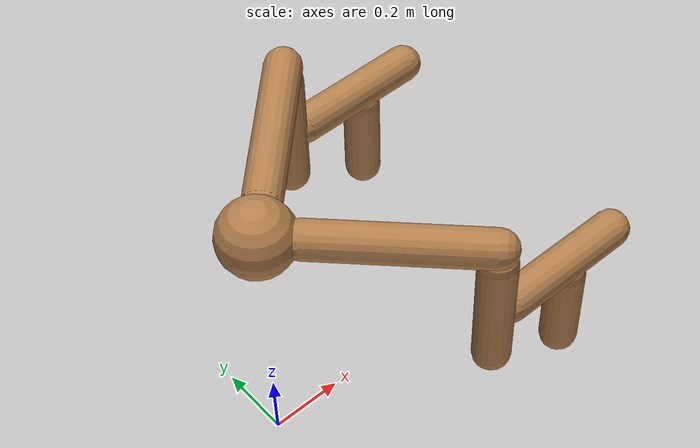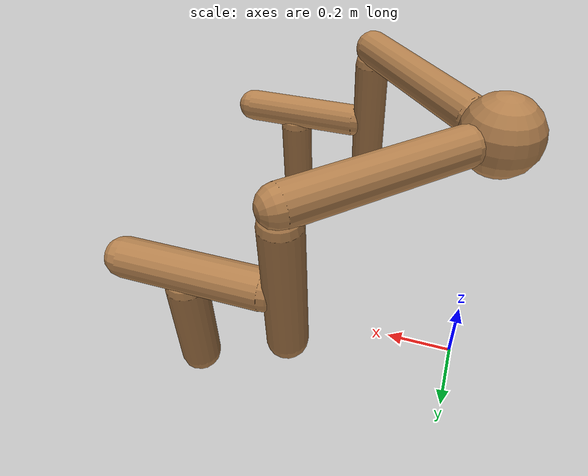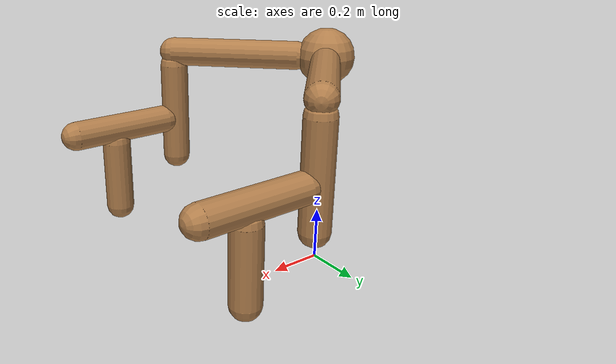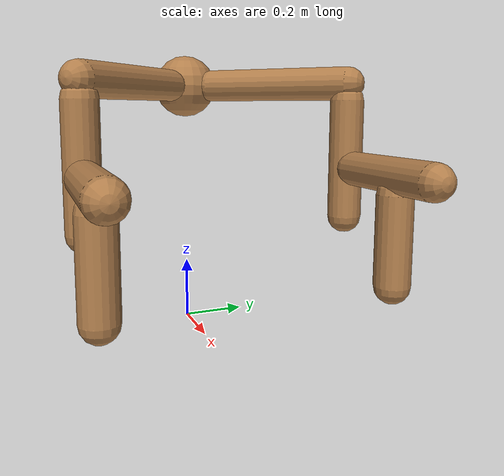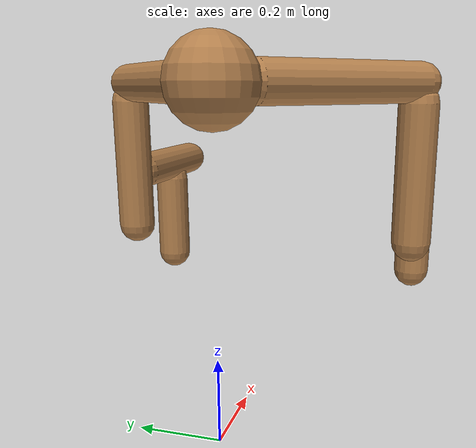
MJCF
<?xml version='1.0' encoding='UTF-8'?>
<!-- Universal Animal Template: unimal -->
<mujoco model="unimal">
  <compiler angle="degree"/>
  <size njmax="2000" nconmax="500"/>
  <option timestep=".005">
    <flag filterparent="disable"/>
  </option>
  <!-- Common defaults to make search space tractable -->
  <default>
    <!-- Define motor defaults -->
    <motor ctrlrange="-1 1" ctrllimited="true"/>
    <!-- Define joint defaults -->
    <default class="normal_joint">
      <joint type="hinge" damping="1" stiffness="1" armature="1" limited="true" range="-120 120" solimplimit="0 0.99 0.01"/>
    </default>
    <default class="walker_joint">
      <joint type="hinge" damping="0.2" stiffness="1" armature=".01" limited="true" range="-120 120" solimplimit="0 0.99 0.01"/>
    </default>
    <default class="stiff_joint">
      <joint type="hinge" damping="5" stiffness="10" armature=".01" limited="true" solimplimit="0 0.99 0.01"/>
    </default>
    <default class="free">
      <joint limited="false" damping="0" armature="0" stiffness="0"/>
    </default>
    <default class="growth_site">
      <site size="1e-6 1e-6 1e-6"/>
    </default>
    <default class="torso_growth_site">
      <site size="1e-6 1e-6 1e-6"/>
    </default>
    <default class="mirror_growth_site">
      <site size="1e-6 1e-6 1e-6"/>
    </default>
    <default class="btm_pos_site">
      <site size="1e-6 1e-6 1e-6"/>
    </default>
    <default class="box_face_site">
      <site size="1e-6 1e-6 1e-6"/>
    </default>
    <default class="imu_vel">
      <site type="box" size="0.05" rgba="1 0 0 0"/>
    </default>
    <default class="touch_site">
      <site group="3" rgba="0 0 1 .3"/>
    </default>
    <default class="food_site">
      <site material="food" size="0.15"/>
    </default>
    <!-- Define geom defaults -->
    <geom type="capsule" condim="3" friction="0.7 0.1 0.1" material="self"/>
  </default>
  <worldbody>
    <light diffuse="1 1 1" directional="true" exponent="1" pos="0 0 8" specular="0.1 0.1 0.1" dir="0 0 -1"/>
    <!-- Programatically generated xml goes here -->
    <body name="torso/0" pos="0 0 0.8">
      <joint name="root" type="free" class="free"/>
      <site name="root" class="imu_vel"/>
      <geom name="torso/0" type="sphere" size="0.1" condim="3" density="700"/>
      <camera name="side" pos="0 -7 2" xyaxes="1 0 0 0 1 2" mode="trackcom"/>
      <site name="torso/0" class="growth_site" pos="0 0 0"/>
      <site name="torso/btm_pos/0" class="btm_pos_site" pos="0 0 -0.1"/>
      <site name="torso/touch/0" class="touch_site" size="0.11"/>
      <site name="torso/horizontal_y/0" class="torso_growth_site" pos="-0.1 0 0"/>
      <body name="limb/0" pos="0.07 0.07 0.0">
        <joint name="limbx/0" type="hinge" class="normal_joint" range="-45 0" pos="-0.04 -0.04 0.0" axis="0.5 -0.5 0.7071"/>
        <geom name="limb/0" type="capsule" fromto="0.0 0.0 0.0 0.32 0.32 0.0" size="0.05" density="600"/>
        <site name="limb/mid/0" class="mirror_growth_site" pos="0.18 0.18 0.0"/>
        <site name="limb/btm/0" class="mirror_growth_site" pos="0.32 0.32 0.0"/>
        <site name="limb/btm_pos/0" class="btm_pos_site" pos="0.32 0.32 0.0"/>
        <site name="limb/touch/0" class="touch_site" size="0.060000000000000005" fromto="0.0 0.0 0.0 0.32 0.32 0.0" type="capsule"/>
        <body name="limb/44" pos="0.32 0.32 -0.05">
          <joint name="limbx/44" type="hinge" class="normal_joint" range="-60 30" pos="0.0 0.0 0.05" axis="1.0 0.0 0.0"/>
          <geom name="limb/44" type="capsule" fromto="0.0 0.0 0.0 0.0 0.0 -0.35" size="0.05" density="600"/>
          <site name="limb/mid/44" class="mirror_growth_site" pos="0.0 0.0 -0.2"/>
          <site name="limb/btm/44" class="mirror_growth_site" pos="0.0 0.0 -0.35"/>
          <site name="limb/btm_pos/44" class="btm_pos_site" pos="0.0 0.0 -0.4"/>
          <site name="limb/touch/44" class="touch_site" size="0.060000000000000005" fromto="0.0 0.0 0.0 0.0 0.0 -0.35" type="capsule"/>
          <body name="limb/46" pos="0.05 0.0 -0.2">
            <joint name="limbx/46" type="hinge" class="normal_joint" range="0 45" pos="-0.05 0.0 0.0" axis="0.0 0.0 1.0"/>
            <geom name="limb/46" type="capsule" fromto="0.0 0.0 0.0 0.35 0.0 0.0" size="0.05" density="600"/>
            <site name="limb/mid/46" class="mirror_growth_site" pos="0.2 0.0 0.0"/>
            <site name="limb/btm/46" class="mirror_growth_site" pos="0.35 0.0 0.0"/>
            <site name="limb/btm_pos/46" class="btm_pos_site" pos="0.4 0.0 0.0"/>
            <site name="limb/touch/46" class="touch_site" size="0.060000000000000005" fromto="0.0 0.0 0.0 0.35 0.0 0.0" type="capsule"/>
            <body name="limb/48" pos="0.2 0.0 -0.05">
              <joint name="limbx/48" type="hinge" class="normal_joint" range="-30 0" pos="0.0 0.0 0.05" axis="1.0 0.0 0.0"/>
              <joint name="limby/48" type="hinge" class="normal_joint" range="0 45" pos="0.0 0.0 0.05" axis="0.0 1.0 0.0"/>
              <geom name="limb/48" type="capsule" fromto="0.0 0.0 0.0 0.0 0.0 -0.25" size="0.05" density="600"/>
              <site name="limb/mid/48" class="mirror_growth_site" pos="0.0 0.0 -0.15"/>
              <site name="limb/btm/48" class="mirror_growth_site" pos="0.0 0.0 -0.25"/>
              <site name="limb/btm_pos/48" class="btm_pos_site" pos="0.0 0.0 -0.3"/>
              <site name="limb/touch/48" class="touch_site" size="0.060000000000000005" fromto="0.0 0.0 0.0 0.0 0.0 -0.25" type="capsule"/>
            </body>
          </body>
        </body>
      </body>
      <body name="limb/1" pos="0.07 -0.07 0.0">
        <joint name="limbx/1" type="hinge" class="normal_joint" range="-45 0" pos="-0.04 0.04 0.0" axis="0.5 0.5 0.7071"/>
        <geom name="limb/1" type="capsule" fromto="0.0 0.0 0.0 0.32 -0.32 0.0" size="0.05" density="600"/>
        <site name="limb/mid/1" class="mirror_growth_site" pos="0.18 -0.18 0.0"/>
        <site name="limb/btm/1" class="mirror_growth_site" pos="0.32 -0.32 0.0"/>
        <site name="limb/btm_pos/1" class="btm_pos_site" pos="0.32 -0.32 0.0"/>
        <site name="limb/touch/1" class="touch_site" size="0.060000000000000005" fromto="0.0 0.0 0.0 0.32 -0.32 0.0" type="capsule"/>
        <body name="limb/45" pos="0.32 -0.32 -0.05">
          <joint name="limbx/45" type="hinge" class="normal_joint" range="-60 30" pos="0.0 0.0 0.05" axis="1.0 0.0 0.0"/>
          <geom name="limb/45" type="capsule" fromto="0.0 0.0 0.0 0.0 0.0 -0.35" size="0.05" density="600"/>
          <site name="limb/mid/45" class="mirror_growth_site" pos="0.0 0.0 -0.2"/>
          <site name="limb/btm/45" class="mirror_growth_site" pos="0.0 0.0 -0.35"/>
          <site name="limb/btm_pos/45" class="btm_pos_site" pos="0.0 0.0 -0.4"/>
          <site name="limb/touch/45" class="touch_site" size="0.060000000000000005" fromto="0.0 0.0 0.0 0.0 0.0 -0.35" type="capsule"/>
          <body name="limb/47" pos="0.05 0.0 -0.2">
            <joint name="limbx/47" type="hinge" class="normal_joint" range="0 45" pos="-0.05 0.0 0.0" axis="0.0 0.0 1.0"/>
            <geom name="limb/47" type="capsule" fromto="0.0 0.0 0.0 0.35 0.0 0.0" size="0.05" density="600"/>
            <site name="limb/mid/47" class="mirror_growth_site" pos="0.2 0.0 0.0"/>
            <site name="limb/btm/47" class="mirror_growth_site" pos="0.35 0.0 0.0"/>
            <site name="limb/btm_pos/47" class="btm_pos_site" pos="0.4 0.0 0.0"/>
            <site name="limb/touch/47" class="touch_site" size="0.060000000000000005" fromto="0.0 0.0 0.0 0.35 0.0 0.0" type="capsule"/>
            <body name="limb/49" pos="0.2 0.0 -0.05">
              <joint name="limbx/49" type="hinge" class="normal_joint" range="-30 0" pos="0.0 0.0 0.05" axis="1.0 0.0 0.0"/>
              <joint name="limby/49" type="hinge" class="normal_joint" range="0 45" pos="0.0 0.0 0.05" axis="0.0 1.0 0.0"/>
              <geom name="limb/49" type="capsule" fromto="0.0 0.0 0.0 0.0 0.0 -0.25" size="0.05" density="600"/>
              <site name="limb/mid/49" class="mirror_growth_site" pos="0.0 0.0 -0.15"/>
              <site name="limb/btm/49" class="mirror_growth_site" pos="0.0 0.0 -0.25"/>
              <site name="limb/btm_pos/49" class="btm_pos_site" pos="0.0 0.0 -0.3"/>
              <site name="limb/touch/49" class="touch_site" size="0.060000000000000005" fromto="0.0 0.0 0.0 0.0 0.0 -0.25" type="capsule"/>
            </body>
          </body>
        </body>
      </body>
    </body>
  </worldbody>
  <actuator>
    <motor joint="limbx/0" gear="250" name="limbx/0"/>
    <motor joint="limbx/44" gear="250" name="limbx/44"/>
    <motor joint="limbx/46" gear="200" name="limbx/46"/>
    <motor joint="limbx/48" gear="200" name="limbx/48"/>
    <motor joint="limby/48" gear="150" name="limby/48"/>
    <motor joint="limbx/1" gear="250" name="limbx/1"/>
    <motor joint="limbx/45" gear="250" name="limbx/45"/>
    <motor joint="limbx/47" gear="200" name="limbx/47"/>
    <motor joint="limbx/49" gear="200" name="limbx/49"/>
    <motor joint="limby/49" gear="150" name="limby/49"/>
  </actuator>
  <sensor>
    <accelerometer name="torso_accel" site="root"/>
    <gyro name="torso_gyro" site="root"/>
    <velocimeter name="torso_vel" site="root"/>
    <subtreeangmom name="unimal_am" body="torso/0"/>
    <touch name="torso/0" site="torso/touch/0"/>
    <touch name="limb/0" site="limb/touch/0"/>
    <touch name="limb/44" site="limb/touch/44"/>
    <touch name="limb/46" site="limb/touch/46"/>
    <touch name="limb/48" site="limb/touch/48"/>
    <touch name="limb/1" site="limb/touch/1"/>
    <touch name="limb/45" site="limb/touch/45"/>
    <touch name="limb/47" site="limb/touch/47"/>
    <touch name="limb/49" site="limb/touch/49"/>
  </sensor>
  <!-- Add hfield assets -->
  <asset/>
  <!-- List of contacts to exclude -->
  <contact/>
  <!-- Define material, texture etc -->
  <asset>
    <material name="grid" texture="grid" texrepeat="1 1" texuniform="true" reflectance="0.1"/>
    <material name="hfield" texture="hfield" texrepeat="1 1" texuniform="true" reflectance="0.1"/>
    <material name="wall" texture="wall" texrepeat="1 1" texuniform="true" reflectance=".5"/>
    <material name="platform" texture="platform" texrepeat="1 1" texuniform="true" reflectance=".5"/>
    <material name="boundary" texture="boundary" texrepeat="1 1" texuniform="true" reflectance=".5"/>
    <material name="jump" texture="jump" texrepeat="1 1" texuniform="true" reflectance=".5"/>
    <material name="goal" rgba="1 0 0 1"/>
    <material name="food" rgba="0 0 1 1" emission="1"/>
    <material name="init_position" rgba="0 1 0 0.7"/>
    <material name="self" rgba=".7 .5 .3 1"/>
    <material name="self_invisible" rgba=".7 .5 .3 0"/>
    <material name="self_default" rgba=".7 .5 .3 1"/>
    <material name="self_highlight" rgba="0 .5 .3 1"/>
    <material name="effector" rgba=".7 .4 .2 1"/>
    <material name="effector_default" rgba=".7 .4 .2 1"/>
    <material name="effector_highlight" rgba="0 .5 .3 1"/>
    <material name="decoration" rgba=".3 .5 .7 1"/>
    <material name="eye" rgba="0 .2 1 1"/>
    <material name="target" rgba=".6 .3 .3 1"/>
    <material name="target_default" rgba=".6 .3 .3 1"/>
    <material name="target_highlight" rgba=".6 .3 .3 .4"/>
    <material name="site" rgba=".5 .5 .5 .3"/>
    <material name="ball" texture="ball"/>
  </asset>
  <asset>
    <texture name="grid" type="2d" builtin="checker" rgb1="0.4 0.4 0.4" rgb2="0.4 0.4 0.4" width="300" height="300" mark="edge" markrgb="0.2 0.2 0.2"/>
    <texture name="hfield" type="2d" builtin="checker" rgb1="0.4 0.4 0.4" rgb2="0.4 0.4 0.4" width="300" height="300" mark="edge" markrgb="0.2 0.2 0.2"/>
    <texture name="wall" type="2d" builtin="flat" rgb1="0.9 0.7 0" rgb2="0.9 0.7 0" width="300" height="300"/>
    <texture name="platform" type="2d" builtin="flat" rgb1="0.3 0 0.8" rgb2="0.3 0 0.8" width="300" height="300"/>
    <texture name="boundary" type="2d" builtin="flat" rgb1="0.3 0.3 0.3" rgb2="0.3 0.3 0.3" width="300" height="300"/>
    <texture name="jump" type="2d" builtin="flat" rgb1="0.3 0.3 0.3" rgb2="0.3 0.3 0.3" width="300" height="300"/>
    <texture name="skybox" type="skybox" builtin="gradient" rgb1="1 1 1" rgb2="0.6 0.6 0.6" width="800" height="800"/>
    <texture name="ball" builtin="checker" mark="cross" width="151" height="151" rgb1="0.1 0.1 0.1" rgb2="0.9 0.9 0.9" markrgb="1 1 1"/>
  </asset>
  <visual>
    <headlight ambient="0.6 0.6 0.6" diffuse="0.3 0.3 0.3" specular="0 0 0"/>
    <map znear=".01" shadowclip="0.5"/>
    <quality shadowsize="16384"/>
  </visual>
</mujoco>
